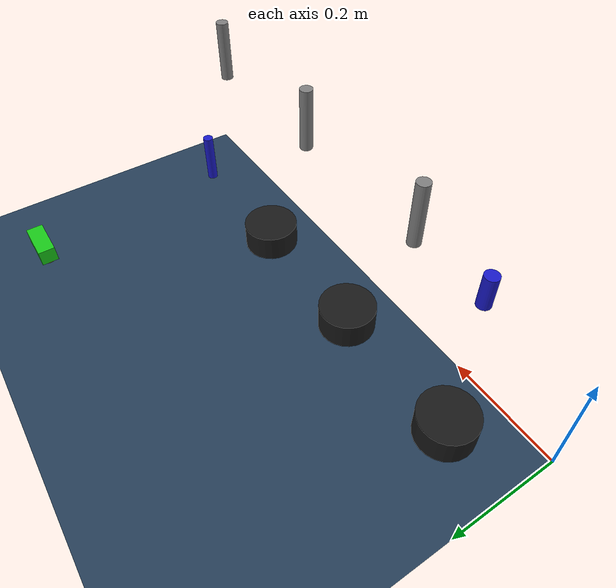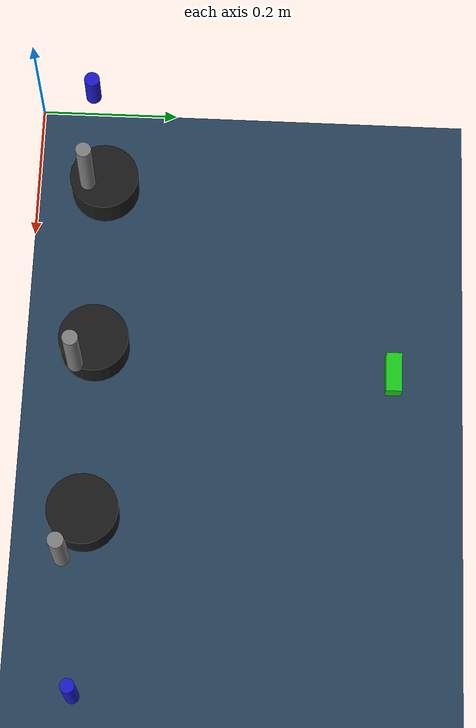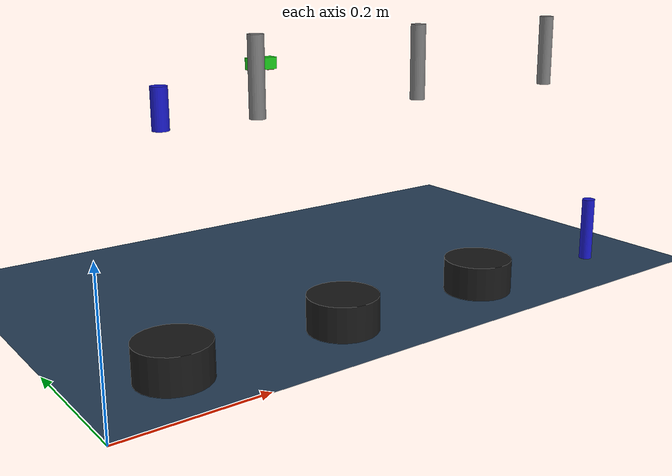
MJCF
<?xml version="1.0" ?>
<mujoco>
  <compiler autolimits="true"/>

  <asset>
    <texture name="grid" type="2d" builtin="checker" width="512" height="512" rgb1=".1 .2 .3" rgb2=".2 .3 .4"/>
    <material name="grid" texture="grid" texrepeat="1 1" texuniform="true" reflectance=".2"/>
  </asset>

  <default>
    <!-- python binding has no the actuatorfrcrange attribute -->
    <joint damping=".03"/>
    <default class="station">
      <geom type="cylinder" size="0.05 0.025" rgba="0.1 0.1 0.1 1"/>
    </default>
  </default>

  <worldbody>
    <geom type="plane" size="0.5 0.5 0.01" material="grid" pos="0.5 0.5 0"/>
    <light name="top light" pos="0.5 0.5 4" diffuse="0.8 0.8 0.8"/>

    <!-- fixed stations -->
    <body name="MTF" pos="0.625 0.1 0.05">
      <geom class="station" pos="0 0 -0.025"/>
    </body>
    <body name="A" pos="0.375 0.1 0.05">
      <geom class="station" pos="0 0 -0.025"/>
    </body>
    <body name="D" pos="0.125 0.1 0.05">
      <geom class="station" pos="0 0 -0.025"/>
    </body>

    <!-- movable_bearer -->
    <body name="x2_bearer" pos="0.875 0.1 0.1">
      <geom pos="0 0 -0.05" type="cylinder" size="0.01 0.05" rgba="0.1 0.1 0.8 1"/> <!-- on the top -->
      <joint name="x2_bearer" type="slide" axis="0 1 0"/>
    </body>
    <body name="x3_bearer" pos="0.125 0.1 0.3">
      <geom pos="0 0 0.025" type="cylinder" size="0.01 0.025" rgba="0.1 0.1 0.8 1"/> <!-- on the bottom -->
      <joint name="x3_bearer_Y" type="slide" axis="0 1 0"/>
      <joint name="x3_bearer_Z" type="slide" axis="0 0 1"/>
      <joint name="x3_bearer_R" type="hinge" axis="0 1 0" pos="0 0 0.05"/>
    </body>

    <!-- gantry -->
    <body name="gantry" pos="0.5 0.1 0.3">
      <geom pos="0 0 0.05" type="cylinder" size="0.01 0.05" rgba="0.5 0.5 0.5 1"/>
      <joint name="gantry_X" type="slide" axis="1 0 0"/>
      <joint name="gantry_Z" type="slide" axis="0 0 1"/>
      <geom pos="-0.25 0 0.05" type="cylinder" size="0.01 0.05" rgba="0.5 0.5 0.5 1"/>
      <geom pos="0.25 0 0.05" type="cylinder" size="0.01 0.05" rgba="0.5 0.5 0.5 1"/>
    </body>

    <!-- T-bar -->
    <body name="T_bar" pos="0.5 0.5 0.3">
      <geom pos="0 0 0.011" type="box" size="0.025 0.01 0.01" rgba="0.1 0.8 0.1 1"/>
      <joint name="T_bar_X" type="slide" axis="1 0 0"/>
      <joint name="T_bar_Y" type="slide" axis="0 1 0"/>
      <joint name="T_bar_Z" type="slide" axis="0 0 1"/>
      <body name="suction_A" pos="0.015 0 0">
        <geom pos="0 0 0.005" type="cylinder" size="0.01 0.005" rgba="0.5 0.5 0.1 1"/>
      </body>
      <body name="suction_B" pos="-0.015 0 0">
        <geom pos="0 0 0.005" type="cylinder" size="0.01 0.005" rgba="0.5 0.5 0.1 1"/>
      </body>
    </body>
  </worldbody>

  <actuator>
    <position name="x2_bearer" joint="x2_bearer" ctrlrange="0 0.5" kp="10"/>
    <position name="x3_bearer_Y" joint="x3_bearer_Y" ctrlrange="0 0.5" kp="10"/>
    <position name="x3_bearer_Z" joint="x3_bearer_Z" ctrlrange="-0.3 0.3" kp="10"/>
    <position name="x3_bearer_R" joint="x3_bearer_R" ctrlrange="0 3.14" kp="10"/>
    <position name="gantry_X" joint="gantry_X" ctrlrange="-0.5 0.5" kp="10"/>
    <position name="gantry_Z" joint="gantry_Z" ctrlrange="-0.3 0.3" kp="10"/>
    <position name="T_bar_X" joint="T_bar_X" ctrlrange="-0.5 0.5" kp="10"/>
    <position name="T_bar_Y" joint="T_bar_Y" ctrlrange="-0.5 0.5" kp="10"/>
    <position name="T_bar_Z" joint="T_bar_Z" ctrlrange="-0.3 0.3" kp="10"/>
    <adhesion name="suction_A" body="suction_A" ctrlrange="0 1" gain="5"/>
    <adhesion name="suction_B" body="suction_B" ctrlrange="0 1" gain="5"/>
  </actuator>

  <sensor>
  </sensor>
</mujoco>
